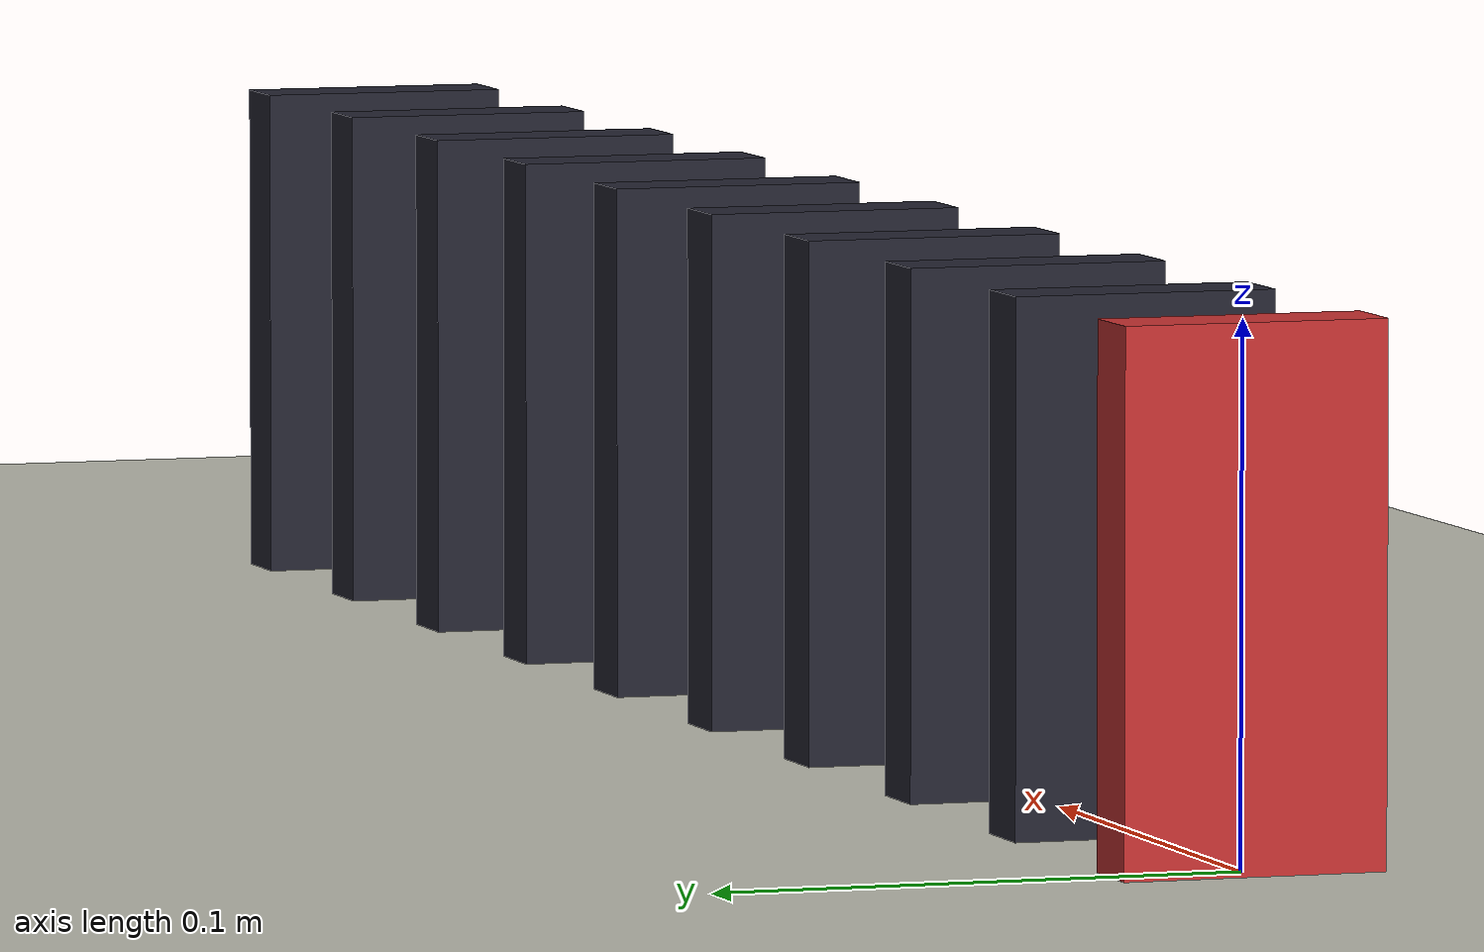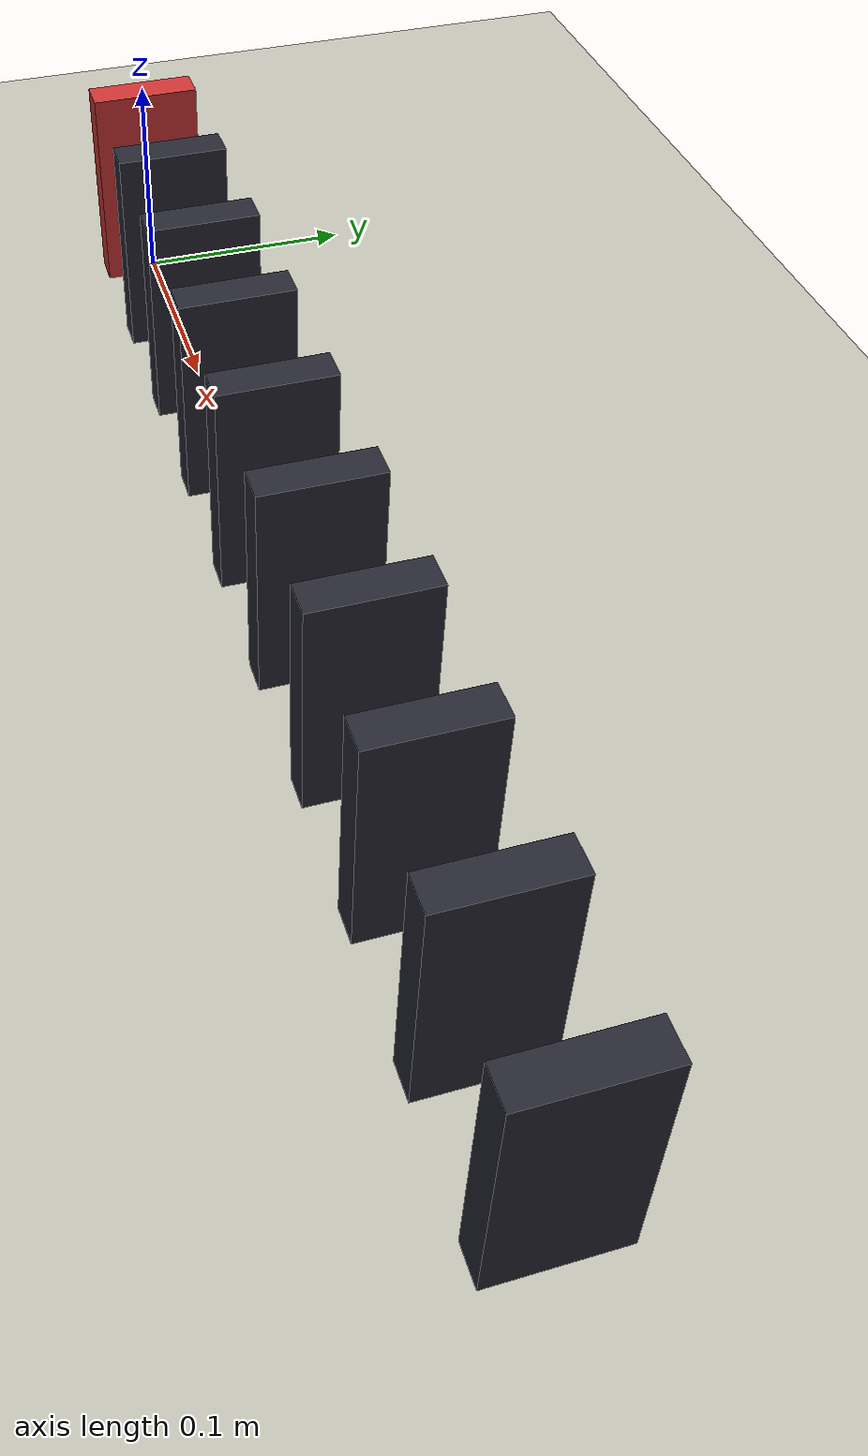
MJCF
<mujoco model="domino_chain">
  <option timestep="0.002" gravity="0 0 -9.81"/>
  <visual>
    <global offwidth="1280" offheight="720"/>
  </visual>
  <asset>
    <material name="floor_mat" rgba="0.75 0.75 0.7 1"/>
    <material name="domino_mat" rgba="0.15 0.15 0.2 1"/>
    <material name="first_mat" rgba="0.8 0.2 0.2 1"/>
  </asset>
  <worldbody>
    <light name="sun" pos="0.27 -0.5 1.5" dir="0 0.3 -1" directional="true"/>
    <camera name="side" pos="0.27 -0.9 0.35" xyaxes="1 0 0 0 0.35 0.94"/>
    <geom name="floor" type="plane" size="2 2 0.1" material="floor_mat" friction="1 0.005 0.0001"/>
    <body name="domino1" pos="0 0 0.05">
      <freejoint name="domino1_free"/>
      <geom name="domino1_geom" type="box" size="0.0075 0.025 0.05" density="700" material="first_mat" friction="0.6 0.005 0.0001"/>
    </body>
    <body name="domino2" pos="0.06 0 0.05">
      <freejoint name="domino2_free"/>
      <geom name="domino2_geom" type="box" size="0.0075 0.025 0.05" density="700" material="domino_mat" friction="0.6 0.005 0.0001"/>
    </body>
    <body name="domino3" pos="0.12 0 0.05">
      <freejoint name="domino3_free"/>
      <geom name="domino3_geom" type="box" size="0.0075 0.025 0.05" density="700" material="domino_mat" friction="0.6 0.005 0.0001"/>
    </body>
    <body name="domino4" pos="0.18 0 0.05">
      <freejoint name="domino4_free"/>
      <geom name="domino4_geom" type="box" size="0.0075 0.025 0.05" density="700" material="domino_mat" friction="0.6 0.005 0.0001"/>
    </body>
    <body name="domino5" pos="0.24 0 0.05">
      <freejoint name="domino5_free"/>
      <geom name="domino5_geom" type="box" size="0.0075 0.025 0.05" density="700" material="domino_mat" friction="0.6 0.005 0.0001"/>
    </body>
    <body name="domino6" pos="0.30 0 0.05">
      <freejoint name="domino6_free"/>
      <geom name="domino6_geom" type="box" size="0.0075 0.025 0.05" density="700" material="domino_mat" friction="0.6 0.005 0.0001"/>
    </body>
    <body name="domino7" pos="0.36 0 0.05">
      <freejoint name="domino7_free"/>
      <geom name="domino7_geom" type="box" size="0.0075 0.025 0.05" density="700" material="domino_mat" friction="0.6 0.005 0.0001"/>
    </body>
    <body name="domino8" pos="0.42 0 0.05">
      <freejoint name="domino8_free"/>
      <geom name="domino8_geom" type="box" size="0.0075 0.025 0.05" density="700" material="domino_mat" friction="0.6 0.005 0.0001"/>
    </body>
    <body name="domino9" pos="0.48 0 0.05">
      <freejoint name="domino9_free"/>
      <geom name="domino9_geom" type="box" size="0.0075 0.025 0.05" density="700" material="domino_mat" friction="0.6 0.005 0.0001"/>
    </body>
    <body name="domino10" pos="0.54 0 0.05">
      <freejoint name="domino10_free"/>
      <geom name="domino10_geom" type="box" size="0.0075 0.025 0.05" density="700" material="domino_mat" friction="0.6 0.005 0.0001"/>
    </body>
  </worldbody>
  <keyframe>
    <key name="start" qpos="0 0 0.05 1 0 0 0  0.06 0 0.05 1 0 0 0  0.12 0 0.05 1 0 0 0  0.18 0 0.05 1 0 0 0  0.24 0 0.05 1 0 0 0  0.30 0 0.05 1 0 0 0  0.36 0 0.05 1 0 0 0  0.42 0 0.05 1 0 0 0  0.48 0 0.05 1 0 0 0  0.54 0 0.05 1 0 0 0" qvel="0.2 0 0.03 0 4 0  0 0 0 0 0 0  0 0 0 0 0 0  0 0 0 0 0 0  0 0 0 0 0 0  0 0 0 0 0 0  0 0 0 0 0 0  0 0 0 0 0 0  0 0 0 0 0 0  0 0 0 0 0 0"/>
  </keyframe>
</mujoco>
